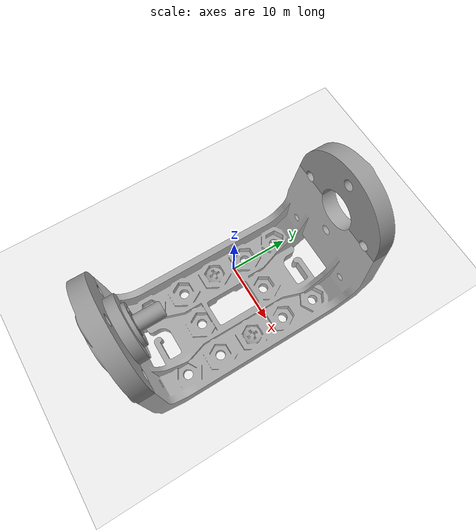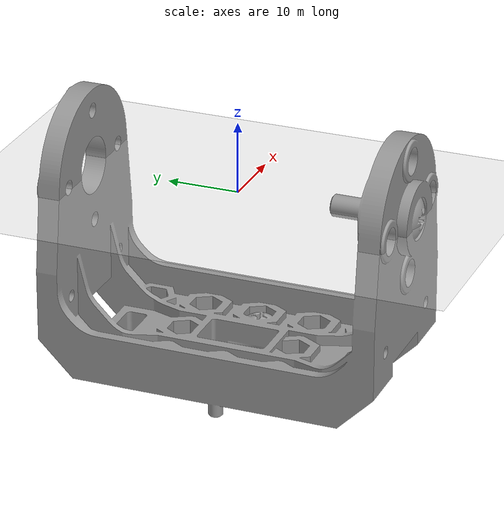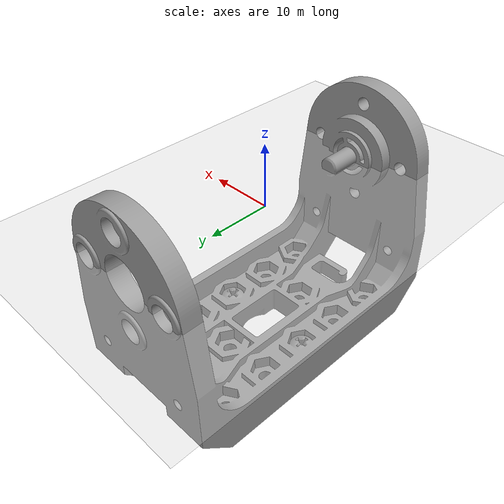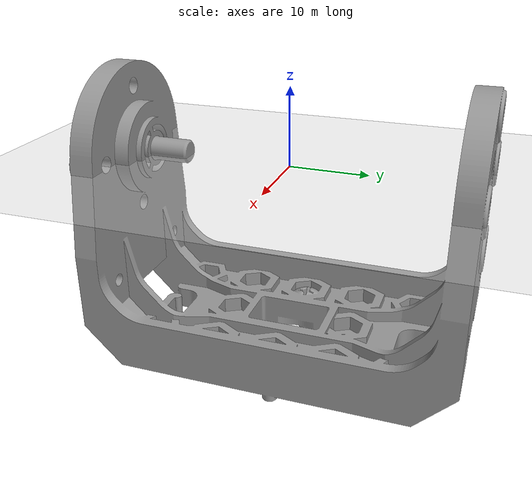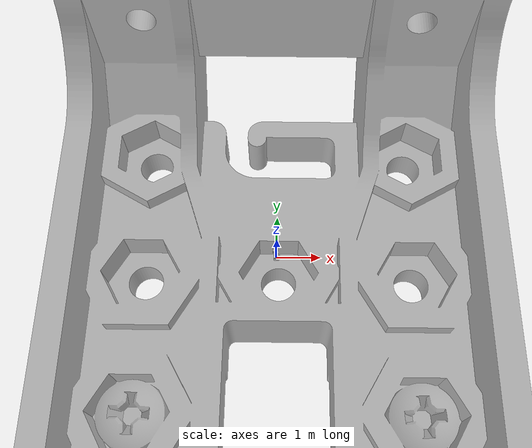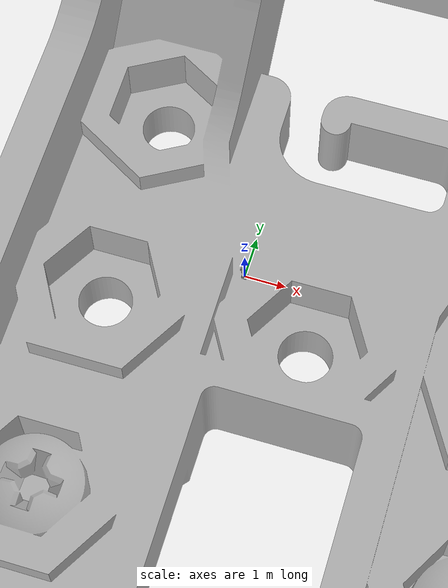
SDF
<sdf version="1.7">
 <world name="default">
  <light name="sun" type="directional">
   <pose>0 0 10 0 -0 0</pose>
   <diffuse>0.8 0.8 0.8 1</diffuse>
   <specular>0.2 0.2 0.2 1</specular>
   <attenuation>
    <range>1000</range>
    <constant>0.9</constant>
    <linear>0.01</linear>
    <quadratic>0.001</quadratic>
   </attenuation>
   <direction>-0.5 0.1 -0.9</direction>
   <spot><inner_angle>0</inner_angle><outer_angle>0</outer_angle><falloff>0</falloff></spot>
  </light>
  <model name="ground_plane">
   <static>1</static>
   <link name="link">
    <collision name="collision">
     <geometry><plane><normal>0 0 1</normal><size>100 100</size></plane></geometry>
     <surface><friction><ode><mu>100</mu><mu2>50</mu2></ode></friction></surface>
    </collision>
    <visual name="visual">
     <cast_shadows>0</cast_shadows>
     <geometry><plane><normal>0 0 1</normal><size>100 100</size></plane></geometry>
     <material>
      <script><uri>file://media/materials/scripts/gazebo.material</uri><name>Gazebo/Grey</name></script>
     </material>
    </visual>
   </link>
  </model>
  <gravity>0 0 -9.8</gravity>
  <magnetic_field>6e-06 2.3e-05 -4.2e-05</magnetic_field>
  <atmosphere type="adiabatic"/>
  <physics type="ode">
   <max_step_size>0.001</max_step_size>
   <real_time_factor>1</real_time_factor>
   <real_time_update_rate>1000</real_time_update_rate>
  </physics>
  <scene><ambient>0.4 0.4 0.4 1</ambient><background>0.7 0.7 0.7 1</background><shadows>1</shadows></scene>
  <audio><device>default</device></audio>
  <spherical_coordinates>
   <surface_model>EARTH_WGS84</surface_model>
   <latitude_deg>0</latitude_deg>
   <longitude_deg>0</longitude_deg>
   <elevation>0</elevation>
   <heading_deg>0</heading_deg>
  </spherical_coordinates>
  <model name="Melman">
   <link name="base_link">
    <inertial>
     <pose>-0.007709 -6e-05 0.392371 0 -0 0</pose>
     <mass>0.691</mass>
     <inertia>
      <ixx>0.0019926</ixx>
      <ixy>5.46e-07</ixy>
      <ixz>-0.00021749</ixz>
      <iyy>0.00128739</iyy>
      <iyz>1.946e-06</iyz>
      <izz>0.00114231</izz>
     </inertia>
    </inertial>
    <collision name="base_link_fixed_joint_lump__Trunk_collision">
     <pose>0 0 0.45 0 -0 0</pose>
     <geometry>
      <mesh>
       <scale>0.001 0.001 0.001</scale>
       <uri>file:///home/jaku6m/Humanoid_workspace/install/ros2_humanoid_virtual_twin/share/ros2_humanoid_virtual_twin/meshes/Trunk-Collision.stl</uri>
      </mesh>
     </geometry>
     <surface>
      <contact><ode><kp>25000</kp><kd>0.05</kd><max_vel>0.1</max_vel></ode></contact>
      <friction><ode><mu>50</mu><mu2>25</mu2></ode></friction>
     </surface>
    </collision>
    <visual name="base_link_fixed_joint_lump__Trunk_visual">
     <pose>0 0 0.45 0 -0 0</pose>
     <geometry>
      <mesh>
       <scale>0.001 0.001 0.001</scale>
       <uri>file:///home/jaku6m/Humanoid_workspace/install/ros2_humanoid_virtual_twin/share/ros2_humanoid_virtual_twin/meshes/Trunk.stl</uri>
      </mesh>
     </geometry>
     <material>
      <script><name>Gazebo/Grey</name><uri>file://media/materials/scripts/gazebo.material</uri></script>
     </material>
    </visual>
    <velocity_decay><linear>0.004</linear><angular>0.004</angular></velocity_decay>
    <self_collide>1</self_collide>
   </link>
   <joint name="Hz" type="revolute">
    <pose relative_to="base_link">0.018061 0.000134 0.4925 0 -0 0</pose>
    <parent>base_link</parent>
    <child>Head_Mounting</child>
    <axis>
     <xyz>0 0 1</xyz>
     <limit><lower>-1.5708</lower><upper>1.5708</upper><effort>1</effort><velocity>1</velocity></limit>
     <dynamics><spring_reference>0.01</spring_reference><spring_stiffness>6</spring_stiffness></dynamics>
    </axis>
    <physics>
     <ode>
      <implicit_spring_damper>1</implicit_spring_damper>
      <cfm_damping>1</cfm_damping>
      <limit><cfm>0.2</cfm><erp>0.2</erp></limit>
     </ode>
    </physics>
   </joint>
   <link name="Head_Mounting">
    <pose relative_to="Hz">0 0 0 0 -0 0</pose>
    <inertial>
     <pose>0 -0.003335 -0.017703 0 -0 0</pose>
     <mass>0.011</mass>
     <inertia>
      <ixx>4.859e-06</ixx>
      <ixy>0</ixy>
      <ixz>0</ixz>
      <iyy>2.246e-06</iyy>
      <iyz>6.37e-07</iyz>
      <izz>3.894e-06</izz>
     </inertia>
    </inertial>
    <collision name="Head_Mounting_collision">
     <geometry>
      <mesh>
       <scale>1 1 1</scale>
       <uri>file:///home/jaku6m/Humanoid_workspace/install/ros2_humanoid_virtual_twin/share/ros2_humanoid_virtual_twin/meshes/Head-Mounting-Collision.stl</uri>
      </mesh>
     </geometry>
     <surface>
      <contact><ode><kp>25000</kp><kd>0.05</kd><max_vel>0.1</max_vel></ode></contact>
      <friction><ode><mu>50</mu><mu2>25</mu2></ode></friction>
     </surface>
    </collision>
    <visual name="Head_Mounting_visual">
     <geometry>
      <mesh>
       <scale>1 1 1</scale>
       <uri>file:///home/jaku6m/Humanoid_workspace/install/ros2_humanoid_virtual_twin/share/ros2_humanoid_virtual_twin/meshes/HeadMounting.stl</uri>
      </mesh>
     </geometry>
     <material>
      <script><name>Gazebo/Grey</name><uri>file://media/materials/scripts/gazebo.material</uri></script>
     </material>
    </visual>
    <velocity_decay><linear>0.004</linear><angular>0.004</angular></velocity_decay>
    <self_collide>1</self_collide>
   </link>
   <joint name="Hy" type="revolute">
    <pose relative_to="Head_Mounting">0 0 0 0 -0 0</pose>
    <parent>Head_Mounting</parent>
    <child>Head</child>
    <axis>
     <xyz>0 1 0</xyz>
     <limit><lower>-1.5708</lower><upper>1.5708</upper><effort>1</effort><velocity>1</velocity></limit>
     <dynamics><spring_reference>0.01</spring_reference><spring_stiffness>6</spring_stiffness></dynamics>
    </axis>
    <physics>
     <ode>
      <implicit_spring_damper>1</implicit_spring_damper>
      <cfm_damping>1</cfm_damping>
      <limit><cfm>0.2</cfm><erp>0.2</erp></limit>
     </ode>
    </physics>
   </joint>
   <link name="Head">
    <pose relative_to="Hy">0 0 0 0 -0 0</pose>
    <inertial>
     <pose>2.2e-05 0.00028 0.011283 0 -0 0</pose>
     <mass>0.077</mass>
     <inertia>
      <ixx>2.2035e-05</ixx>
      <ixy>-8e-09</ixy>
      <ixz>-2e-08</ixz>
      <iyy>1.8242e-05</iyy>
      <iyz>6.89e-07</iyz>
      <izz>1.3649e-05</izz>
     </inertia>
    </inertial>
    <collision name="Head_collision">
     <geometry>
      <mesh>
       <scale>1 1 1</scale>
       <uri>file:///home/jaku6m/Humanoid_workspace/install/ros2_humanoid_virtual_twin/share/ros2_humanoid_virtual_twin/meshes/Head-Collision.stl</uri>
      </mesh>
     </geometry>
     <surface>
      <contact><ode><kp>25000</kp><kd>0.05</kd><max_vel>0.1</max_vel></ode></contact>
      <friction><ode><mu>50</mu><mu2>25</mu2></ode></friction>
     </surface>
    </collision>
    <visual name="Head_visual">
     <geometry>
      <mesh>
       <scale>1 1 1</scale>
       <uri>file:///home/jaku6m/Humanoid_workspace/install/ros2_humanoid_virtual_twin/share/ros2_humanoid_virtual_twin/meshes/Head.stl</uri>
      </mesh>
     </geometry>
     <material>
      <script><name>Gazebo/Grey</name><uri>file://media/materials/scripts/gazebo.material</uri></script>
     </material>
    </visual>
    <velocity_decay><linear>0.004</linear><angular>0.004</angular></velocity_decay>
    <self_collide>1</self_collide>
   </link>
   <joint name="LAy" type="revolute">
    <pose relative_to="base_link">0 0.088341 0.45 0 -0 0</pose>
    <parent>base_link</parent>
    <child>Left_ArmMounting</child>
    <axis>
     <xyz>0 1 0</xyz>
     <limit><lower>-1.5708</lower><upper>1.5708</upper><effort>1</effort><velocity>1</velocity></limit>
     <dynamics><spring_reference>0.01</spring_reference><spring_stiffness>6</spring_stiffness></dynamics>
    </axis>
    <physics>
     <ode>
      <implicit_spring_damper>1</implicit_spring_damper>
      <cfm_damping>1</cfm_damping>
      <limit><cfm>0.2</cfm><erp>0.2</erp></limit>
     </ode>
    </physics>
   </joint>
   <link name="Left_ArmMounting">
    <pose relative_to="LAy">0 0 0 0 -0 0</pose>
    <inertial>
     <pose>-0.003335 -0.017703 0 0 -0 0</pose>
     <mass>0.011</mass>
     <inertia>
      <ixx>2.246e-06</ixx>
      <ixy>6.37e-07</ixy>
      <ixz>0</ixz>
      <iyy>3.894e-06</iyy>
      <iyz>0</iyz>
      <izz>4.859e-06</izz>
     </inertia>
    </inertial>
    <collision name="Left_ArmMounting_collision">
     <geometry>
      <mesh>
       <scale>1 1 1</scale>
       <uri>file:///home/jaku6m/Humanoid_workspace/install/ros2_humanoid_virtual_twin/share/ros2_humanoid_virtual_twin/meshes/Left-ArmMounting-Collision.stl</uri>
      </mesh>
     </geometry>
     <surface>
      <contact><ode><kp>25000</kp><kd>0.05</kd><max_vel>0.1</max_vel></ode></contact>
      <friction><ode><mu>50</mu><mu2>25</mu2></ode></friction>
     </surface>
    </collision>
    <visual name="Left_ArmMounting_visual">
     <geometry>
      <mesh>
       <scale>1 1 1</scale>
       <uri>file:///home/jaku6m/Humanoid_workspace/install/ros2_humanoid_virtual_twin/share/ros2_humanoid_virtual_twin/meshes/Left-ArmMounting.stl</uri>
      </mesh>
     </geometry>
     <material>
      <script><name>Gazebo/Grey</name><uri>file://media/materials/scripts/gazebo.material</uri></script>
     </material>
    </visual>
    <velocity_decay><linear>0.004</linear><angular>0.004</angular></velocity_decay>
    <self_collide>1</self_collide>
   </link>
   <joint name="LAx" type="revolute">
    <pose relative_to="Left_ArmMounting">0 0 0 0 -0 0</pose>
    <parent>Left_ArmMounting</parent>
    <child>Left_Arm</child>
    <axis>
     <xyz>1 0 0</xyz>
     <limit><lower>-1.5708</lower><upper>1.5708</upper><effort>1</effort><velocity>1</velocity></limit>
     <dynamics><spring_reference>0.01</spring_reference><spring_stiffness>6</spring_stiffness></dynamics>
    </axis>
    <physics>
     <ode>
      <implicit_spring_damper>1</implicit_spring_damper>
      <cfm_damping>1</cfm_damping>
      <limit><cfm>0.2</cfm><erp>0.2</erp></limit>
     </ode>
    </physics>
   </joint>
   <link name="Left_Arm">
    <pose relative_to="LAx">0 0 0 0 -0 0</pose>
    <inertial>
     <pose>0.000152 -8.7e-05 -0.049855 0 -0 0</pose>
     <mass>0.165</mass>
     <inertia>
      <ixx>0.000269772</ixx>
      <ixy>-2e-08</ixy>
      <ixz>-1.454e-06</ixz>
      <iyy>0.000269138</iyy>
      <iyz>-2.69e-07</iyz>
      <izz>2.9837e-05</izz>
     </inertia>
    </inertial>
    <collision name="Left_Arm_collision">
     <geometry>
      <mesh>
       <scale>0.001 0.001 0.001</scale>
       <uri>file:///home/jaku6m/Humanoid_workspace/install/ros2_humanoid_virtual_twin/share/ros2_humanoid_virtual_twin/meshes/Left-Arm_Collision.stl</uri>
      </mesh>
     </geometry>
     <surface>
      <contact><ode><kp>25000</kp><kd>0.05</kd><max_vel>0.1</max_vel></ode></contact>
      <friction><ode><mu>50</mu><mu2>25</mu2></ode></friction>
     </surface>
    </collision>
    <visual name="Left_Arm_visual">
     <geometry>
      <mesh>
       <scale>0.001 0.001 0.001</scale>
       <uri>file:///home/jaku6m/Humanoid_workspace/install/ros2_humanoid_virtual_twin/share/ros2_humanoid_virtual_twin/meshes/Left-Arm.stl</uri>
      </mesh>
     </geometry>
     <material>
      <script><name>Gazebo/Grey</name><uri>file://media/materials/scripts/gazebo.material</uri></script>
     </material>
    </visual>
    <velocity_decay><linear>0.004</linear><angular>0.004</angular></velocity_decay>
    <self_collide>1</self_collide>
   </link>
   <joint name="LFAy" type="revolute">
    <pose relative_to="Left_Arm">0 0 -0.1123 0 -0 0</pose>
    <parent>Left_Arm</parent>
    <child>Left_Forearm</child>
    <axis>
     <xyz>0 1 0</xyz>
     <limit><lower>-1.5708</lower><upper>1.5708</upper><effort>1</effort><velocity>1</velocity></limit>
     <dynamics><spring_reference>0.01</spring_reference><spring_stiffness>6</spring_stiffness></dynamics>
    </axis>
    <physics>
     <ode>
      <implicit_spring_damper>1</implicit_spring_damper>
      <cfm_damping>1</cfm_damping>
      <limit><cfm>0.2</cfm><erp>0.2</erp></limit>
     </ode>
    </physics>
   </joint>
   <link name="Left_Forearm">
    <pose relative_to="LFAy">0 0 0 0 -0 0</pose>
    <inertial>
     <pose>0 0 -0.093816 0 -0 0</pose>
     <mass>0.094</mass>
     <inertia>
      <ixx>0.000228969</ixx>
      <ixy>0</ixy>
      <ixz>0</ixz>
      <iyy>0.00023148</iyy>
      <iyz>2e-09</iyz>
      <izz>1.6247e-05</izz>
     </inertia>
    </inertial>
    <visual name="Left_Forearm_visual">
     <geometry>
      <mesh>
       <scale>0.001 0.001 0.001</scale>
       <uri>file:///home/jaku6m/Humanoid_workspace/install/ros2_humanoid_virtual_twin/share/ros2_humanoid_virtual_twin/meshes/Left_ForeArm.stl</uri>
      </mesh>
     </geometry>
     <material>
      <script><name>Gazebo/Grey</name><uri>file://media/materials/scripts/gazebo.material</uri></script>
     </material>
    </visual>
   </link>
   <joint name="LTz" type="revolute">
    <pose relative_to="base_link">0 0.04 0.299935 0 -0 0</pose>
    <parent>base_link</parent>
    <child>Left_HipMount</child>
    <axis>
     <xyz>0 0 1</xyz>
     <limit><lower>-1.5708</lower><upper>1.5708</upper><effort>1</effort><velocity>1</velocity></limit>
     <dynamics><spring_reference>0.01</spring_reference><spring_stiffness>6</spring_stiffness></dynamics>
    </axis>
    <physics>
     <ode>
      <implicit_spring_damper>1</implicit_spring_damper>
      <cfm_damping>1</cfm_damping>
      <limit><cfm>0.2</cfm><erp>0.2</erp></limit>
     </ode>
    </physics>
   </joint>
   <link name="Left_HipMount">
    <pose relative_to="LTz">0 0 0 0 -0 0</pose>
    <inertial>
     <pose>-0.014306 0 0.024769 0 -0 0</pose>
     <mass>0.038</mass>
     <inertia>
      <ixx>1.1743e-05</ixx>
      <ixy>0</ixy>
      <ixz>4.429e-06</ixz>
      <iyy>6.1298e-05</iyy>
      <iyz>0</iyz>
      <izz>5.8734e-05</izz>
     </inertia>
    </inertial>
    <collision name="Left_HipMount_collision">
     <geometry>
      <mesh>
       <scale>1 1 1</scale>
       <uri>file:///home/jaku6m/Humanoid_workspace/install/ros2_humanoid_virtual_twin/share/ros2_humanoid_virtual_twin/meshes/Rgiht-HipMount-Collision.stl</uri>
      </mesh>
     </geometry>
     <surface>
      <contact><ode><kp>25000</kp><kd>0.05</kd><max_vel>0.1</max_vel></ode></contact>
      <friction><ode><mu>50</mu><mu2>25</mu2></ode></friction>
     </surface>
    </collision>
    <visual name="Left_HipMount_visual">
     <geometry>
      <mesh>
       <scale>1 1 1</scale>
       <uri>file:///home/jaku6m/Humanoid_workspace/install/ros2_humanoid_virtual_twin/share/ros2_humanoid_virtual_twin/meshes/Left-HipMount.stl</uri>
      </mesh>
     </geometry>
     <material>
      <script><name>Gazebo/Grey</name><uri>file://media/materials/scripts/gazebo.material</uri></script>
     </material>
    </visual>
    <velocity_decay><linear>0.004</linear><angular>0.004</angular></velocity_decay>
    <self_collide>1</self_collide>
   </link>
   <joint name="LTx" type="revolute">
    <pose relative_to="Left_HipMount">0 0 0 0 -0 0</pose>
    <parent>Left_HipMount</parent>
    <child>Left_Hip</child>
    <axis>
     <xyz>1 0 0</xyz>
     <limit><lower>-1.5708</lower><upper>1.5708</upper><effort>1</effort><velocity>1</velocity></limit>
     <dynamics><spring_reference>0.01</spring_reference><spring_stiffness>6</spring_stiffness></dynamics>
    </axis>
    <physics>
     <ode>
      <implicit_spring_damper>1</implicit_spring_damper>
      <cfm_damping>1</cfm_damping>
      <limit><cfm>0.2</cfm><erp>0.2</erp></limit>
     </ode>
    </physics>
   </joint>
   <link name="Left_Hip">
    <pose relative_to="LTx">0 0 0 0 -0 0</pose>
    <inertial>
     <pose>-0.021137 0.00017 0.014739 0 -0 0</pose>
     <mass>0.351</mass>
     <inertia>
      <ixx>0.000135823</ixx>
      <ixy>-1.265e-06</ixy>
      <ixz>4.25e-06</ixz>
      <iyy>0.000317524</iyy>
      <iyz>2.029e-06</iyz>
      <izz>0.000266663</izz>
     </inertia>
    </inertial>
    <collision name="Left_Hip_collision">
     <geometry>
      <mesh>
       <scale>1 1 1</scale>
       <uri>file:///home/jaku6m/Humanoid_workspace/install/ros2_humanoid_virtual_twin/share/ros2_humanoid_virtual_twin/meshes/Right-Hip-Collision.stl</uri>
      </mesh>
     </geometry>
     <surface>
      <contact><ode><kp>25000</kp><kd>0.05</kd><max_vel>0.1</max_vel></ode></contact>
      <friction><ode><mu>50</mu><mu2>25</mu2></ode></friction>
     </surface>
    </collision>
    <visual name="Left_Hip_visual">
     <geometry>
      <mesh>
       <scale>1 1 1</scale>
       <uri>file:///home/jaku6m/Humanoid_workspace/install/ros2_humanoid_virtual_twin/share/ros2_humanoid_virtual_twin/meshes/Left-Hip.stl</uri>
      </mesh>
     </geometry>
     <material>
      <script><name>Gazebo/Grey</name><uri>file://media/materials/scripts/gazebo.material</uri></script>
     </material>
    </visual>
    <velocity_decay><linear>0.004</linear><angular>0.004</angular></velocity_decay>
    <self_collide>1</self_collide>
   </link>
   <joint name="LTy" type="revolute">
    <pose relative_to="Left_Hip">0 0 0 0 -0 0</pose>
    <parent>Left_Hip</parent>
    <child>Left_Thigh</child>
    <axis>
     <xyz>0 1 0</xyz>
     <limit><lower>-1.5708</lower><upper>1.5708</upper><effort>1</effort><velocity>1</velocity></limit>
     <dynamics><spring_reference>0.01</spring_reference><spring_stiffness>6</spring_stiffness></dynamics>
    </axis>
    <physics>
     <ode>
      <implicit_spring_damper>1</implicit_spring_damper>
      <cfm_damping>1</cfm_damping>
      <limit><cfm>0.2</cfm><erp>0.2</erp></limit>
     </ode>
    </physics>
   </joint>
   <link name="Left_Thigh">
    <pose relative_to="LTy">0 0 0 0 -0 0</pose>
    <inertial>
     <pose>0.002335 0.00065 -0.099757 0 -0 0</pose>
     <mass>0.22</mass>
     <inertia>
      <ixx>0.000275661</ixx>
      <ixy>3.34e-07</ixy>
      <ixz>-7.878e-06</ixz>
      <iyy>0.000250206</iyy>
      <iyz>-5.455e-06</iyz>
      <izz>7.757e-05</izz>
     </inertia>
    </inertial>
    <collision name="Left_Thigh_collision">
     <geometry>
      <mesh>
       <scale>1 1 1</scale>
       <uri>file:///home/jaku6m/Humanoid_workspace/install/ros2_humanoid_virtual_twin/share/ros2_humanoid_virtual_twin/meshes/Right-Thigh-Collision.stl</uri>
      </mesh>
     </geometry>
     <surface>
      <contact><ode><kp>25000</kp><kd>0.05</kd><max_vel>0.1</max_vel></ode></contact>
      <friction><ode><mu>50</mu><mu2>25</mu2></ode></friction>
     </surface>
    </collision>
    <visual name="Left_Thigh_visual">
     <geometry>
      <mesh>
       <scale>1 1 1</scale>
       <uri>file:///home/jaku6m/Humanoid_workspace/install/ros2_humanoid_virtual_twin/share/ros2_humanoid_virtual_twin/meshes/Left-Thigh.stl</uri>
      </mesh>
     </geometry>
     <material>
      <script><name>Gazebo/Grey</name><uri>file://media/materials/scripts/gazebo.material</uri></script>
     </material>
    </visual>
    <velocity_decay><linear>0.004</linear><angular>0.004</angular></velocity_decay>
    <self_collide>1</self_collide>
   </link>
   <joint name="LSy" type="revolute">
    <pose relative_to="Left_Thigh">0 0 -0.128 0 -0 0</pose>
    <parent>Left_Thigh</parent>
    <child>Left_Shank</child>
    <axis>
     <xyz>0 1 0</xyz>
     <limit><lower>-1.5708</lower><upper>1.5708</upper><effort>1</effort><velocity>1</velocity></limit>
     <dynamics><spring_reference>0.01</spring_reference><spring_stiffness>6</spring_stiffness></dynamics>
    </axis>
    <physics>
     <ode>
      <implicit_spring_damper>1</implicit_spring_damper>
      <cfm_damping>1</cfm_damping>
      <limit><cfm>0.2</cfm><erp>0.2</erp></limit>
     </ode>
    </physics>
   </joint>
   <link name="Left_Shank">
    <pose relative_to="LSy">0 0 0 0 -0 0</pose>
    <inertial>
     <pose>0.004836 -0.002813 -0.060226 0 -0 0</pose>
     <mass>0.059</mass>
     <inertia>
      <ixx>0.000128748</ixx>
      <ixy>-8.04e-07</ixy>
      <ixz>-3.208e-06</ixz>
      <iyy>0.000106103</iyy>
      <iyz>-6.27e-07</iyz>
      <izz>3.7097e-05</izz>
     </inertia>
    </inertial>
    <collision name="Left_Shank_collision">
     <geometry>
      <mesh>
       <scale>1 1 1</scale>
       <uri>file:///home/jaku6m/Humanoid_workspace/install/ros2_humanoid_virtual_twin/share/ros2_humanoid_virtual_twin/meshes/Right-Shank-Collision.stl</uri>
      </mesh>
     </geometry>
     <surface>
      <contact><ode><kp>25000</kp><kd>0.05</kd><max_vel>0.1</max_vel></ode></contact>
      <friction><ode><mu>50</mu><mu2>25</mu2></ode></friction>
     </surface>
    </collision>
    <visual name="Left_Shank_visual">
     <geometry>
      <mesh>
       <scale>1 1 1</scale>
       <uri>file:///home/jaku6m/Humanoid_workspace/install/ros2_humanoid_virtual_twin/share/ros2_humanoid_virtual_twin/meshes/Left-Shank.stl</uri>
      </mesh>
     </geometry>
     <material>
      <script><name>Gazebo/Grey</name><uri>file://media/materials/scripts/gazebo.material</uri></script>
     </material>
    </visual>
    <velocity_decay><linear>0.004</linear><angular>0.004</angular></velocity_decay>
    <self_collide>1</self_collide>
   </link>
   <joint name="LFy" type="revolute">
    <pose relative_to="Left_Shank">0 0 -0.128 0 -0 0</pose>
    <parent>Left_Shank</parent>
    <child>Left_Ankle</child>
    <axis>
     <xyz>0 1 0</xyz>
     <limit><lower>-1.5708</lower><upper>1.5708</upper><effort>1</effort><velocity>1</velocity></limit>
     <dynamics><spring_reference>0.01</spring_reference><spring_stiffness>6</spring_stiffness></dynamics>
    </axis>
    <physics>
     <ode>
      <implicit_spring_damper>1</implicit_spring_damper>
      <cfm_damping>1</cfm_damping>
      <limit><cfm>0.2</cfm><erp>0.2</erp></limit>
     </ode>
    </physics>
   </joint>
   <link name="Left_Ankle">
    <pose relative_to="LFy">0 0 0 0 -0 0</pose>
    <inertial>
     <pose>-0.021137 0.00017 0.014739 0 -0 0</pose>
     <mass>0.351</mass>
     <inertia>
      <ixx>0.000135823</ixx>
      <ixy>-1.265e-06</ixy>
      <ixz>4.25e-06</ixz>
      <iyy>0.000317524</iyy>
      <iyz>2.029e-06</iyz>
      <izz>0.000266663</izz>
     </inertia>
    </inertial>
    <collision name="Left_Ankle_collision">
     <geometry>
      <mesh>
       <scale>1 1 1</scale>
       <uri>file:///home/jaku6m/Humanoid_workspace/install/ros2_humanoid_virtual_twin/share/ros2_humanoid_virtual_twin/meshes/Left-Ankle-Collision.stl</uri>
      </mesh>
     </geometry>
     <surface>
      <contact><ode><kp>25000</kp><kd>0.05</kd><max_vel>0.1</max_vel></ode></contact>
      <friction><ode><mu>50</mu><mu2>25</mu2></ode></friction>
     </surface>
    </collision>
    <visual name="Left_Ankle_visual">
     <geometry>
      <mesh>
       <scale>1 1 1</scale>
       <uri>file:///home/jaku6m/Humanoid_workspace/install/ros2_humanoid_virtual_twin/share/ros2_humanoid_virtual_twin/meshes/Left-Ankle.stl</uri>
      </mesh>
     </geometry>
     <material>
      <script><name>Gazebo/Grey</name><uri>file://media/materials/scripts/gazebo.material</uri></script>
     </material>
    </visual>
    <velocity_decay><linear>0.004</linear><angular>0.004</angular></velocity_decay>
    <self_collide>1</self_collide>
   </link>
   <joint name="LFx" type="revolute">
    <pose relative_to="Left_Ankle">0 0 0 0 -0 0</pose>
    <parent>Left_Ankle</parent>
    <child>Left_Foot</child>
    <axis>
     <xyz>1 0 0</xyz>
     <limit><lower>-1.5708</lower><upper>1.5708</upper><effort>1</effort><velocity>1</velocity></limit>
     <dynamics>
      <damping>0</damping>
      <friction>9e-05</friction>
      <spring_reference>0.01</spring_reference>
      <spring_stiffness>6</spring_stiffness>
     </dynamics>
    </axis>
    <physics>
     <ode>
      <implicit_spring_damper>1</implicit_spring_damper>
      <cfm_damping>1</cfm_damping>
      <limit><cfm>0.2</cfm><erp>0.2</erp></limit>
     </ode>
    </physics>
   </joint>
   <link name="Left_Foot">
    <pose relative_to="LFx">0 0 0 0 -0 0</pose>
    <inertial>
     <pose>-0.004442 0 -0.03098 0 -0 0</pose>
     <mass>0.088</mass>
     <inertia>
      <ixx>4.2902e-05</ixx>
      <ixy>0</ixy>
      <ixz>-6.47e-07</ixz>
      <iyy>0.000138102</iyy>
      <iyz>0</iyz>
      <izz>0.000160902</izz>
     </inertia>
    </inertial>
    <collision name="Left_Foot_collision">
     <geometry>
      <mesh>
       <scale>1 1 1</scale>
       <uri>file:///home/jaku6m/Humanoid_workspace/install/ros2_humanoid_virtual_twin/share/ros2_humanoid_virtual_twin/meshes/Left-Foot-collision.stl</uri>
      </mesh>
     </geometry>
     <surface>
      <contact><ode><kp>25000</kp><kd>0.05</kd><max_vel>0.1</max_vel></ode></contact>
      <friction><ode><mu>50</mu><mu2>25</mu2></ode></friction>
     </surface>
    </collision>
    <visual name="Left_Foot_visual">
     <geometry>
      <mesh>
       <scale>1 1 1</scale>
       <uri>file:///home/jaku6m/Humanoid_workspace/install/ros2_humanoid_virtual_twin/share/ros2_humanoid_virtual_twin/meshes/Right-Foot.stl</uri>
      </mesh>
     </geometry>
     <material>
      <script><name>Gazebo/Grey</name><uri>file://media/materials/scripts/gazebo.material</uri></script>
     </material>
    </visual>
    <velocity_decay><linear>0.004</linear><angular>0.004</angular></velocity_decay>
    <self_collide>1</self_collide>
   </link>
   <joint name="RAy" type="revolute">
    <pose relative_to="base_link">0 -0.088659 0.45 0 -0 0</pose>
    <parent>base_link</parent>
    <child>Right_ArmMounting</child>
    <axis>
     <xyz>0 1 0</xyz>
     <limit><lower>-1.5708</lower><upper>1.5708</upper><effort>1</effort><velocity>1</velocity></limit>
     <dynamics><spring_reference>0.01</spring_reference><spring_stiffness>6</spring_stiffness></dynamics>
    </axis>
    <physics>
     <ode>
      <implicit_spring_damper>1</implicit_spring_damper>
      <cfm_damping>1</cfm_damping>
      <limit><cfm>0.2</cfm><erp>0.2</erp></limit>
     </ode>
    </physics>
   </joint>
   <link name="Right_ArmMounting">
    <pose relative_to="RAy">0 0 0 0 -0 0</pose>
    <inertial>
     <pose>-0.003335 -0.017703 0 0 -0 0</pose>
     <mass>0.011</mass>
     <inertia>
      <ixx>2.246e-06</ixx>
      <ixy>-6.37e-07</ixy>
      <ixz>0</ixz>
      <iyy>3.894e-06</iyy>
      <iyz>0</iyz>
      <izz>4.859e-06</izz>
     </inertia>
    </inertial>
    <collision name="Right_ArmMounting_collision">
     <geometry>
      <mesh>
       <scale>1 1 1</scale>
       <uri>file:///home/jaku6m/Humanoid_workspace/install/ros2_humanoid_virtual_twin/share/ros2_humanoid_virtual_twin/meshes/Right-ArmMounting-Collision.stl</uri>
      </mesh>
     </geometry>
     <surface>
      <contact><ode><kp>25000</kp><kd>0.05</kd><max_vel>0.1</max_vel></ode></contact>
      <friction><ode><mu>50</mu><mu2>25</mu2></ode></friction>
     </surface>
    </collision>
    <visual name="Right_ArmMounting_visual">
     <geometry>
      <mesh>
       <scale>1 1 1</scale>
       <uri>file:///home/jaku6m/Humanoid_workspace/install/ros2_humanoid_virtual_twin/share/ros2_humanoid_virtual_twin/meshes/Right-ArmMounting.stl</uri>
      </mesh>
     </geometry>
     <material>
      <script><name>Gazebo/Grey</name><uri>file://media/materials/scripts/gazebo.material</uri></script>
     </material>
    </visual>
    <velocity_decay><linear>0.004</linear><angular>0.004</angular></velocity_decay>
    <self_collide>1</self_collide>
   </link>
   <joint name="RAx" type="revolute">
    <pose relative_to="Right_ArmMounting">0 0 0 0 -0 0</pose>
    <parent>Right_ArmMounting</parent>
    <child>Right_Arm</child>
    <axis>
     <xyz>1 0 0</xyz>
     <limit><lower>-1.5708</lower><upper>1.5708</upper><effort>1</effort><velocity>1</velocity></limit>
     <dynamics><spring_reference>0.01</spring_reference><spring_stiffness>6</spring_stiffness></dynamics>
    </axis>
    <physics>
     <ode>
      <implicit_spring_damper>1</implicit_spring_damper>
      <cfm_damping>1</cfm_damping>
      <limit><cfm>0.2</cfm><erp>0.2</erp></limit>
     </ode>
    </physics>
   </joint>
   <link name="Right_Arm">
    <pose relative_to="RAx">0 0 0 0 -0 0</pose>
    <inertial>
     <pose>0.000152 -8.7e-05 -0.049855 0 -0 0</pose>
     <mass>0.165</mass>
     <inertia>
      <ixx>0.000269772</ixx>
      <ixy>-2e-08</ixy>
      <ixz>-1.454e-06</ixz>
      <iyy>0.000269138</iyy>
      <iyz>-2.69e-07</iyz>
      <izz>2.9837e-05</izz>
     </inertia>
    </inertial>
    <collision name="Right_Arm_collision">
     <geometry>
      <mesh>
       <scale>0.001 0.001 0.001</scale>
       <uri>file:///home/jaku6m/Humanoid_workspace/install/ros2_humanoid_virtual_twin/share/ros2_humanoid_virtual_twin/meshes/Right-Arm_Collision.stl</uri>
      </mesh>
     </geometry>
     <surface>
      <contact><ode><kp>25000</kp><kd>0.05</kd><max_vel>0.1</max_vel></ode></contact>
      <friction><ode><mu>50</mu><mu2>25</mu2></ode></friction>
     </surface>
    </collision>
    <visual name="Right_Arm_visual">
     <geometry>
      <mesh>
       <scale>0.001 0.001 0.001</scale>
       <uri>file:///home/jaku6m/Humanoid_workspace/install/ros2_humanoid_virtual_twin/share/ros2_humanoid_virtual_twin/meshes/Right-Arm.stl</uri>
      </mesh>
     </geometry>
     <material>
      <script><name>Gazebo/Grey</name><uri>file://media/materials/scripts/gazebo.material</uri></script>
     </material>
    </visual>
    <velocity_decay><linear>0.004</linear><angular>0.004</angular></velocity_decay>
    <self_collide>1</self_collide>
   </link>
   <joint name="RFAy" type="revolute">
    <pose relative_to="Right_Arm">0 0 -0.1123 0 -0 0</pose>
    <parent>Right_Arm</parent>
    <child>Right_Forearm</child>
    <axis>
     <xyz>0 1 0</xyz>
     <limit><lower>-1.5708</lower><upper>1.5708</upper><effort>1</effort><velocity>1</velocity></limit>
     <dynamics><spring_reference>0.01</spring_reference><spring_stiffness>6</spring_stiffness></dynamics>
    </axis>
    <physics>
     <ode>
      <implicit_spring_damper>1</implicit_spring_damper>
      <cfm_damping>1</cfm_damping>
      <limit><cfm>0.2</cfm><erp>0.2</erp></limit>
     </ode>
    </physics>
   </joint>
   <link name="Right_Forearm">
    <pose relative_to="RFAy">0 0 0 0 -0 0</pose>
    <inertial>
     <pose>0 0 -0.093816 0 -0 0</pose>
     <mass>0.094</mass>
     <inertia>
      <ixx>0.000228969</ixx>
      <ixy>0</ixy>
      <ixz>0</ixz>
      <iyy>0.00023148</iyy>
      <iyz>2e-09</iyz>
      <izz>1.6247e-05</izz>
     </inertia>
    </inertial>
    <visual name="Right_Forearm_visual">
     <geometry>
      <mesh>
       <scale>0.001 0.001 0.001</scale>
       <uri>file:///home/jaku6m/Humanoid_workspace/install/ros2_humanoid_virtual_twin/share/ros2_humanoid_virtual_twin/meshes/Right_Forearm.stl</uri>
      </mesh>
     </geometry>
     <material>
      <script><name>Gazebo/Grey</name><uri>file://media/materials/scripts/gazebo.material</uri></script>
     </material>
    </visual>
   </link>
   <joint name="RTz" type="revolute">
    <pose relative_to="base_link">0 -0.04 0.299935 0 -0 0</pose>
    <parent>base_link</parent>
    <child>Right_HipMount</child>
    <axis>
     <xyz>0 0 1</xyz>
     <limit><lower>-1.5708</lower><upper>1.5708</upper><effort>1</effort><velocity>1</velocity></limit>
     <dynamics><spring_reference>0.01</spring_reference><spring_stiffness>6</spring_stiffness></dynamics>
    </axis>
    <physics>
     <ode>
      <implicit_spring_damper>1</implicit_spring_damper>
      <cfm_damping>1</cfm_damping>
      <limit><cfm>0.2</cfm><erp>0.2</erp></limit>
     </ode>
    </physics>
   </joint>
   <link name="Right_HipMount">
    <pose relative_to="RTz">0 0 0 0 -0 0</pose>
    <inertial>
     <pose>-0.014306 0 0.024769 0 -0 0</pose>
     <mass>0.038</mass>
     <inertia>
      <ixx>1.1743e-05</ixx>
      <ixy>0</ixy>
      <ixz>4.429e-06</ixz>
      <iyy>6.1298e-05</iyy>
      <iyz>0</iyz>
      <izz>5.8734e-05</izz>
     </inertia>
    </inertial>
    <collision name="Right_HipMount_collision">
     <geometry>
      <mesh>
       <scale>1 1 1</scale>
       <uri>file:///home/jaku6m/Humanoid_workspace/install/ros2_humanoid_virtual_twin/share/ros2_humanoid_virtual_twin/meshes/Right-HipMount-Collision.stl</uri>
      </mesh>
     </geometry>
     <surface>
      <contact><ode><kp>25000</kp><kd>0.05</kd><max_vel>0.1</max_vel></ode></contact>
      <friction><ode><mu>50</mu><mu2>25</mu2></ode></friction>
     </surface>
    </collision>
    <visual name="Right_HipMount_visual">
     <geometry>
      <mesh>
       <scale>1 1 1</scale>
       <uri>file:///home/jaku6m/Humanoid_workspace/install/ros2_humanoid_virtual_twin/share/ros2_humanoid_virtual_twin/meshes/Right-HipMount.stl</uri>
      </mesh>
     </geometry>
     <material>
      <script><name>Gazebo/Grey</name><uri>file://media/materials/scripts/gazebo.material</uri></script>
     </material>
    </visual>
    <velocity_decay><linear>0.004</linear><angular>0.004</angular></velocity_decay>
    <self_collide>1</self_collide>
   </link>
   <joint name="RTx" type="revolute">
    <pose relative_to="Right_HipMount">0 0 0 0 -0 0</pose>
    <parent>Right_HipMount</parent>
    <child>Right_Hip</child>
    <axis>
     <xyz>1 0 0</xyz>
     <limit><lower>-1.5708</lower><upper>1.5708</upper><effort>1</effort><velocity>1</velocity></limit>
     <dynamics><spring_reference>0.01</spring_reference><spring_stiffness>6</spring_stiffness></dynamics>
    </axis>
    <physics>
     <ode>
      <implicit_spring_damper>1</implicit_spring_damper>
      <cfm_damping>1</cfm_damping>
      <limit><cfm>0.2</cfm><erp>0.2</erp></limit>
     </ode>
    </physics>
   </joint>
   <link name="Right_Hip">
    <pose relative_to="RTx">0 0 0 0 -0 0</pose>
    <inertial>
     <pose>-2.1e-05 0.00017 0.014739 0 -0 0</pose>
     <mass>0.351</mass>
     <inertia>
      <ixx>0.000135823</ixx>
      <ixy>-1.265e-06</ixy>
      <ixz>4.25e-06</ixz>
      <iyy>0.000317524</iyy>
      <iyz>2.029e-06</iyz>
      <izz>0.000266663</izz>
     </inertia>
    </inertial>
    <collision name="Right_Hip_collision">
     <geometry>
      <mesh>
       <scale>1 1 1</scale>
       <uri>file:///home/jaku6m/Humanoid_workspace/install/ros2_humanoid_virtual_twin/share/ros2_humanoid_virtual_twin/meshes/Right-Hip-Collision.stl</uri>
      </mesh>
     </geometry>
     <surface>
      <contact><ode><kp>25000</kp><kd>0.05</kd><max_vel>0.1</max_vel></ode></contact>
      <friction><ode><mu>50</mu><mu2>25</mu2></ode></friction>
     </surface>
    </collision>
    <visual name="Right_Hip_visual">
     <geometry>
      <mesh>
       <scale>1 1 1</scale>
       <uri>file:///home/jaku6m/Humanoid_workspace/install/ros2_humanoid_virtual_twin/share/ros2_humanoid_virtual_twin/meshes/Right-Hip.stl</uri>
      </mesh>
     </geometry>
     <material>
      <script><name>Gazebo/Grey</name><uri>file://media/materials/scripts/gazebo.material</uri></script>
     </material>
    </visual>
    <velocity_decay><linear>0.004</linear><angular>0.004</angular></velocity_decay>
    <self_collide>1</self_collide>
   </link>
   <joint name="RTy" type="revolute">
    <pose relative_to="Right_Hip">0 0 0 0 -0 0</pose>
    <parent>Right_Hip</parent>
    <child>Right_Thigh</child>
    <axis>
     <xyz>0 1 0</xyz>
     <limit><lower>-1.5708</lower><upper>1.5708</upper><effort>1</effort><velocity>1</velocity></limit>
     <dynamics><spring_reference>0.01</spring_reference><spring_stiffness>6</spring_stiffness></dynamics>
    </axis>
    <physics>
     <ode>
      <implicit_spring_damper>1</implicit_spring_damper>
      <cfm_damping>1</cfm_damping>
      <limit><cfm>0.2</cfm><erp>0.2</erp></limit>
     </ode>
    </physics>
   </joint>
   <link name="Right_Thigh">
    <pose relative_to="RTy">0 0 0 0 -0 0</pose>
    <inertial>
     <pose>0.002335 0.00065 -0.099757 0 -0 0</pose>
     <mass>0.22</mass>
     <inertia>
      <ixx>0.000275661</ixx>
      <ixy>3.34e-07</ixy>
      <ixz>-7.878e-06</ixz>
      <iyy>0.000250206</iyy>
      <iyz>-5.455e-06</iyz>
      <izz>7.757e-05</izz>
     </inertia>
    </inertial>
    <collision name="Right_Thigh_collision">
     <geometry>
      <mesh>
       <scale>1 1 1</scale>
       <uri>file:///home/jaku6m/Humanoid_workspace/install/ros2_humanoid_virtual_twin/share/ros2_humanoid_virtual_twin/meshes/Right-Thigh-Collision.stl</uri>
      </mesh>
     </geometry>
     <surface>
      <contact><ode><kp>25000</kp><kd>0.05</kd><max_vel>0.1</max_vel></ode></contact>
      <friction><ode><mu>50</mu><mu2>25</mu2></ode></friction>
     </surface>
    </collision>
    <visual name="Right_Thigh_visual">
     <geometry>
      <mesh>
       <scale>1 1 1</scale>
       <uri>file:///home/jaku6m/Humanoid_workspace/install/ros2_humanoid_virtual_twin/share/ros2_humanoid_virtual_twin/meshes/Right-Thigh.stl</uri>
      </mesh>
     </geometry>
     <material>
      <script><name>Gazebo/Grey</name><uri>file://media/materials/scripts/gazebo.material</uri></script>
     </material>
    </visual>
    <velocity_decay><linear>0.004</linear><angular>0.004</angular></velocity_decay>
    <self_collide>1</self_collide>
   </link>
   <joint name="RSy" type="revolute">
    <pose relative_to="Right_Thigh">0 0 -0.128 0 -0 0</pose>
    <parent>Right_Thigh</parent>
    <child>Right_Shank</child>
    <axis>
     <xyz>0 1 0</xyz>
     <limit><lower>-1.5708</lower><upper>1.5708</upper><effort>1</effort><velocity>1</velocity></limit>
     <dynamics><spring_reference>0.01</spring_reference><spring_stiffness>6</spring_stiffness></dynamics>
    </axis>
    <physics>
     <ode>
      <implicit_spring_damper>1</implicit_spring_damper>
      <cfm_damping>1</cfm_damping>
      <limit><cfm>0.2</cfm><erp>0.2</erp></limit>
     </ode>
    </physics>
   </joint>
   <link name="Right_Shank">
    <pose relative_to="RSy">0 0 0 0 -0 0</pose>
    <inertial>
     <pose>0.004836 -0.002813 -0.060226 0 -0 0</pose>
     <mass>0.059</mass>
     <inertia>
      <ixx>0.000128748</ixx>
      <ixy>-8.04e-07</ixy>
      <ixz>-3.208e-06</ixz>
      <iyy>0.000106103</iyy>
      <iyz>-6.27e-07</iyz>
      <izz>3.7097e-05</izz>
     </inertia>
    </inertial>
    <collision name="Right_Shank_collision">
     <geometry>
      <mesh>
       <scale>1 1 1</scale>
       <uri>file:///home/jaku6m/Humanoid_workspace/install/ros2_humanoid_virtual_twin/share/ros2_humanoid_virtual_twin/meshes/Right-Shank-Collision.stl</uri>
      </mesh>
     </geometry>
     <surface>
      <contact><ode><kp>25000</kp><kd>0.05</kd><max_vel>0.1</max_vel></ode></contact>
      <friction><ode><mu>50</mu><mu2>25</mu2></ode></friction>
     </surface>
    </collision>
    <visual name="Right_Shank_visual">
     <geometry>
      <mesh>
       <scale>1 1 1</scale>
       <uri>file:///home/jaku6m/Humanoid_workspace/install/ros2_humanoid_virtual_twin/share/ros2_humanoid_virtual_twin/meshes/Right-Shank.stl</uri>
      </mesh>
     </geometry>
     <material>
      <script><name>Gazebo/Grey</name><uri>file://media/materials/scripts/gazebo.material</uri></script>
     </material>
    </visual>
    <velocity_decay><linear>0.004</linear><angular>0.004</angular></velocity_decay>
    <self_collide>1</self_collide>
   </link>
   <joint name="RFy" type="revolute">
    <pose relative_to="Right_Shank">0 0 -0.128 0 -0 0</pose>
    <parent>Right_Shank</parent>
    <child>Right_Ankle</child>
    <axis>
     <xyz>0 1 0</xyz>
     <limit><lower>-1.5708</lower><upper>1.5708</upper><effort>1</effort><velocity>1</velocity></limit>
     <dynamics><spring_reference>0.01</spring_reference><spring_stiffness>6</spring_stiffness></dynamics>
    </axis>
    <physics>
     <ode>
      <implicit_spring_damper>1</implicit_spring_damper>
      <cfm_damping>1</cfm_damping>
      <limit><cfm>0.2</cfm><erp>0.2</erp></limit>
     </ode>
    </physics>
   </joint>
   <link name="Right_Ankle">
    <pose relative_to="RFy">0 0 0 0 -0 0</pose>
    <inertial>
     <pose>-0.021137 0.00017 0.014739 0 -0 0</pose>
     <mass>0.351</mass>
     <inertia>
      <ixx>0.000135823</ixx>
      <ixy>-1.265e-06</ixy>
      <ixz>4.25e-06</ixz>
      <iyy>0.000317524</iyy>
      <iyz>2.029e-06</iyz>
      <izz>0.000266663</izz>
     </inertia>
    </inertial>
    <collision name="Right_Ankle_collision">
     <geometry>
      <mesh>
       <scale>1 1 1</scale>
       <uri>file:///home/jaku6m/Humanoid_workspace/install/ros2_humanoid_virtual_twin/share/ros2_humanoid_virtual_twin/meshes/Left-Ankle-Collision.stl</uri>
      </mesh>
     </geometry>
     <surface>
      <contact><ode><kp>25000</kp><kd>0.05</kd><max_vel>0.1</max_vel></ode></contact>
      <friction><ode><mu>50</mu><mu2>25</mu2></ode></friction>
     </surface>
    </collision>
    <visual name="Right_Ankle_visual">
     <geometry>
      <mesh>
       <scale>1 1 1</scale>
       <uri>file:///home/jaku6m/Humanoid_workspace/install/ros2_humanoid_virtual_twin/share/ros2_humanoid_virtual_twin/meshes/Left-Ankle.stl</uri>
      </mesh>
     </geometry>
     <material>
      <script><name>Gazebo/Grey</name><uri>file://media/materials/scripts/gazebo.material</uri></script>
     </material>
    </visual>
    <velocity_decay><linear>0.004</linear><angular>0.004</angular></velocity_decay>
    <self_collide>1</self_collide>
   </link>
   <joint name="RFx" type="revolute">
    <pose relative_to="Right_Ankle">0 0 0 0 -0 0</pose>
    <parent>Right_Ankle</parent>
    <child>Right_Foot</child>
    <axis>
     <xyz>1 0 0</xyz>
     <limit><lower>-1.5708</lower><upper>1.5708</upper><effort>1</effort><velocity>1</velocity></limit>
     <dynamics>
      <damping>0.7</damping>
      <friction>0.5</friction>
      <spring_reference>0.01</spring_reference>
      <spring_stiffness>6</spring_stiffness>
     </dynamics>
    </axis>
    <physics>
     <ode>
      <implicit_spring_damper>1</implicit_spring_damper>
      <cfm_damping>1</cfm_damping>
      <limit><cfm>0.2</cfm><erp>0.2</erp></limit>
     </ode>
    </physics>
   </joint>
   <link name="Right_Foot">
    <pose relative_to="RFx">0 0 0 0 -0 0</pose>
    <inertial>
     <pose>-0.004442 0 -0.03098 0 -0 0</pose>
     <mass>0.088</mass>
     <inertia>
      <ixx>4.2902e-05</ixx>
      <ixy>0</ixy>
      <ixz>-6.47e-07</ixz>
      <iyy>0.000138102</iyy>
      <iyz>0</iyz>
      <izz>0.000160902</izz>
     </inertia>
    </inertial>
    <collision name="Right_Foot_collision">
     <geometry>
      <mesh>
       <scale>1 1 1</scale>
       <uri>file:///home/jaku6m/Humanoid_workspace/install/ros2_humanoid_virtual_twin/share/ros2_humanoid_virtual_twin/meshes/Left-Foot-collision.stl</uri>
      </mesh>
     </geometry>
     <surface>
      <contact><ode><kp>25000</kp><kd>0.05</kd><max_vel>0.1</max_vel></ode></contact>
      <friction><ode><mu>50</mu><mu2>25</mu2></ode></friction>
     </surface>
    </collision>
    <visual name="Right_Foot_visual">
     <geometry>
      <mesh>
       <scale>1 1 1</scale>
       <uri>file:///home/jaku6m/Humanoid_workspace/install/ros2_humanoid_virtual_twin/share/ros2_humanoid_virtual_twin/meshes/Right-Foot.stl</uri>
      </mesh>
     </geometry>
     <material>
      <script><name>Gazebo/Grey</name><uri>file://media/materials/scripts/gazebo.material</uri></script>
     </material>
    </visual>
    <velocity_decay><linear>0.004</linear><angular>0.004</angular></velocity_decay>
    <self_collide>1</self_collide>
   </link>
   <static>0</static>
   <plugin name="gazebo_ros2_control" filename="libgazebo_ros2_control.so">
    <robot_param>robot_description</robot_param>
    <robot_param_node>robot_state_publisher</robot_param_node>
    <parameters>/home/jaku6m/Humanoid_workspace/install/ros2_humanoid_virtual_twin/share/ros2_humanoid_virtual_twin/controllers/controllers.yaml</parameters>
    <hold_joints>1</hold_joints>
    <controller_manager_name>controller_manager</controller_manager_name>
   </plugin>
  </model>
 </world>
</sdf>
